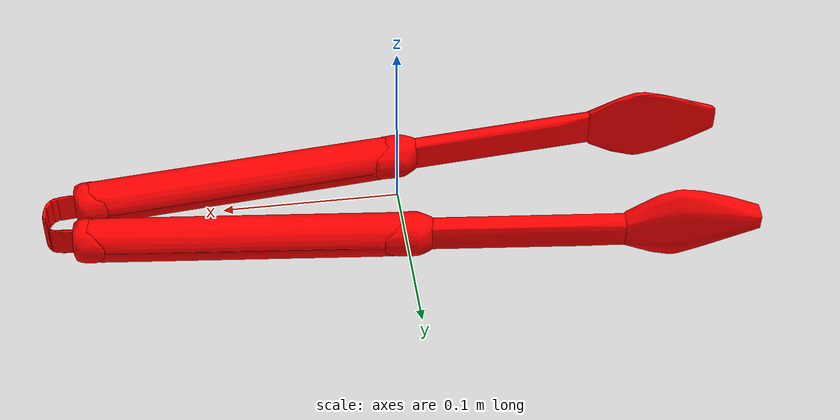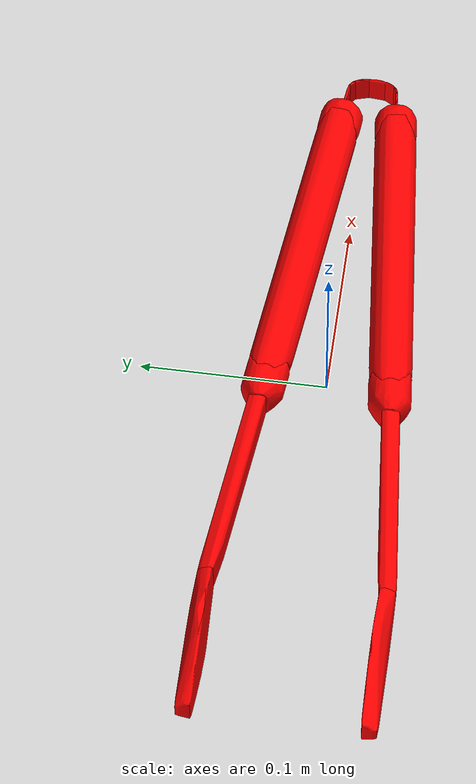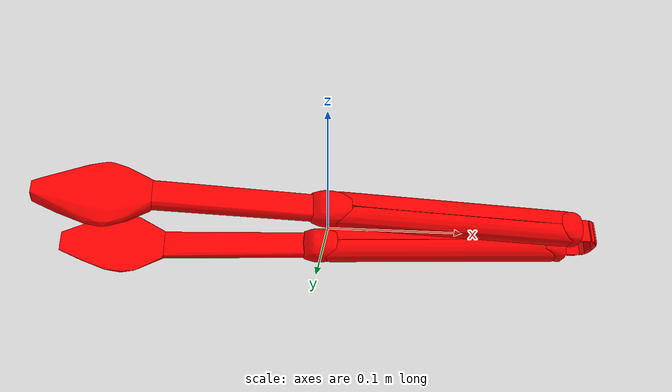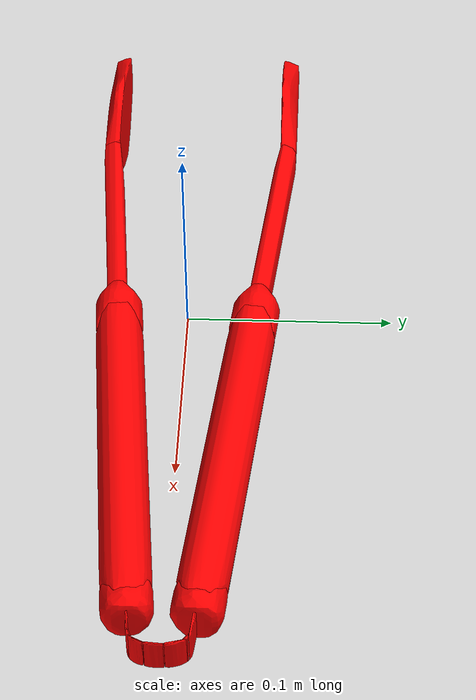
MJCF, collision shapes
<?xml version="1.0" ?>
<mujoco model="kitchen_pliers">
	<compiler meshdir="kitchen_pliers/meshes" texturedir="kitchen_pliers/textures" angle="radian" autolimits="true" balanceinertia="true" boundmass="0.000001" boundinertia="0.000001"/>
	<default>
		<default class="visual">
			<geom contype="0" conaffinity="0"/>
		</default>
		<default class="collision">
			<geom rgba="1.0 0.0 0.0 0.0"/>
		</default>
	</default>
	<asset>
		<mesh name="KitchenPliersHead" file="stl/KitchenPliersHead.stl" scale="1.0 1.0 1.0"/>
		<mesh name="KitchenPliersHead_001" file="stl/KitchenPliersHead_001.stl" scale="1.0 1.0 1.0"/>
		<mesh name="KitchenPliersHead_002" file="stl/KitchenPliersHead_002.stl" scale="1.0 1.0 1.0"/>
		<mesh name="KitchenPliersHead_003" file="stl/KitchenPliersHead_003.stl" scale="1.0 1.0 1.0"/>
		<mesh name="KitchenPliersHead_004" file="stl/KitchenPliersHead_004.stl" scale="1.0 1.0 1.0"/>
		<mesh name="KitchenPliersHandleMetal" file="stl/KitchenPliersHandleMetal.stl" scale="1.0 1.0 1.0"/>
		<mesh name="KitchenPliersHandleMetal_001" file="stl/KitchenPliersHandleMetal_001.stl" scale="1.0 1.0 1.0"/>
		<mesh name="KitchenPliersHandleMetal_002" file="stl/KitchenPliersHandleMetal_002.stl" scale="1.0 1.0 1.0"/>
		<mesh name="KitchenPliersHandleMetal_003" file="stl/KitchenPliersHandleMetal_003.stl" scale="1.0 1.0 1.0"/>
		<mesh name="KitchenPliersHandleMetal_004" file="stl/KitchenPliersHandleMetal_004.stl" scale="1.0 1.0 1.0"/>
		<mesh name="KitchenPliersHandlePlastic" file="obj/KitchenPliersHandlePlastic.obj" scale="1.0 1.0 1.0"/>
		<mesh name="KitchenPliersHandlePlastic_001" file="stl/KitchenPliersHandlePlastic_001.stl" scale="1.0 1.0 1.0"/>
		<mesh name="KitchenPliersHandlePlastic_002" file="stl/KitchenPliersHandlePlastic_002.stl" scale="1.0 1.0 1.0"/>
		<mesh name="KitchenPliersHandlePlastic_003" file="stl/KitchenPliersHandlePlastic_003.stl" scale="1.0 1.0 1.0"/>
		<mesh name="KitchenPliersHandlePlastic_004" file="stl/KitchenPliersHandlePlastic_004.stl" scale="1.0 1.0 1.0"/>
		<mesh name="KitchenPliersHangingHole" file="stl/KitchenPliersHangingHole.stl" scale="1.0 1.0 1.0"/>
		<mesh name="KitchenPliersHangingHole_001" file="stl/KitchenPliersHangingHole_001.stl" scale="1.0 1.0 1.0"/>
		<mesh name="KitchenPliersHangingHole_002" file="stl/KitchenPliersHangingHole_002.stl" scale="1.0 1.0 1.0"/>
		<mesh name="KitchenPliersHangingHole_003" file="stl/KitchenPliersHangingHole_003.stl" scale="1.0 1.0 1.0"/>
		<mesh name="KitchenPliersHangingHole_004" file="stl/KitchenPliersHangingHole_004.stl" scale="1.0 1.0 1.0"/>
		<mesh name="KitchenPliersHangingHole_005" file="stl/KitchenPliersHangingHole_005.stl" scale="1.0 1.0 1.0"/>
		<mesh name="KitchenPliersHangingHole_006" file="stl/KitchenPliersHangingHole_006.stl" scale="1.0 1.0 1.0"/>
		<mesh name="KitchenPliersHangingHole_007" file="stl/KitchenPliersHangingHole_007.stl" scale="1.0 1.0 1.0"/>
		<material name="M_KitchenPliersHead" rgba="0.6470999717712402 0.6470999717712402 0.6470999717712402 1.0" emission="0.0"/>
		<material name="M_KitchenPliersHandleMetal" rgba="0.6470999717712402 0.6470999717712402 0.6470999717712402 1.0" emission="0.0"/>
		<material name="M_KitchenPliersHandlePlastic" texture="T_KitchenPliersHandlePlastic"/>
		<material name="M_KitchenPliersHangingHole" rgba="0.6470999717712402 0.6470999717712402 0.6470999717712402 1.0" emission="0.0"/>
		<texture name="T_KitchenPliersHandlePlastic" type="2d" file="T_KitchenPliersHandlePlastic.png"/>
	</asset>
	<worldbody>
		<body name="kitchen_pliers" pos="0.0 0.0 0.0" quat="1.0 0.0 0.0 0.0">
			<body name="kitchen_pliers_head" pos="0.0 0.0 0.0" quat="1.0 0.0 0.0 0.0">
				<inertial mass="0.06604120135307312" pos="-0.09527463465929031 -0.00019158580107614398 -2.0926424895151285e-06" quat="0.9999998211860657 5.52939013687137e-07 -1.2274520486244e-05 0.0005997137632220984" diaginertia="0.0001320251903962344 0.0008560716523788869 0.000979700474999845"/>
				<geom name="KitchenPliersHead" type="mesh" pos="0.0 0.0 0.0" quat="1.0 0.0 0.0 0.0" mesh="KitchenPliersHead" material="M_KitchenPliersHead" class="visual"/>
				<geom name="KitchenPliersHead_001" type="mesh" pos="0.0 0.0 0.0" quat="1.0 0.0 0.0 0.0" mesh="KitchenPliersHead_001" class="collision"/>
				<geom name="KitchenPliersHead_002" type="mesh" pos="0.0 0.0 0.0" quat="1.0 0.0 0.0 0.0" mesh="KitchenPliersHead_002" class="collision"/>
				<geom name="KitchenPliersHead_003" type="mesh" pos="0.0 0.0 0.0" quat="1.0 0.0 0.0 0.0" mesh="KitchenPliersHead_003" class="collision"/>
				<geom name="KitchenPliersHead_004" type="mesh" pos="0.0 0.0 0.0" quat="1.0 0.0 0.0 0.0" mesh="KitchenPliersHead_004" class="collision"/>
			</body>
			<body name="kitchen_pliers_handle_plastic" pos="0.0 0.0 0.0" quat="1.0 0.0 0.0 0.0">
				<inertial mass="0.1916133612394333" pos="0.06831031292676926 -0.0004918914055451751 3.10893824462255e-06" quat="0.9999978542327881 -3.239452439629531e-07 -8.704527317604516e-06 -0.0020618708804249763" diaginertia="0.00015829596668481827 0.0023368890397250652 0.0024847143795341253"/>
				<geom name="KitchenPliersHandlePlastic" type="mesh" pos="0.0 0.0 0.0" quat="1.0 0.0 0.0 0.0" mesh="KitchenPliersHandlePlastic" material="M_KitchenPliersHandlePlastic" class="visual"/>
				<geom name="KitchenPliersHandlePlastic_001" type="mesh" pos="0.0 0.0 0.0" quat="1.0 0.0 0.0 0.0" mesh="KitchenPliersHandlePlastic_001" class="collision"/>
				<geom name="KitchenPliersHandlePlastic_002" type="mesh" pos="0.0 0.0 0.0" quat="1.0 0.0 0.0 0.0" mesh="KitchenPliersHandlePlastic_002" class="collision"/>
				<geom name="KitchenPliersHandlePlastic_003" type="mesh" pos="0.0 0.0 0.0" quat="1.0 0.0 0.0 0.0" mesh="KitchenPliersHandlePlastic_003" class="collision"/>
				<geom name="KitchenPliersHandlePlastic_004" type="mesh" pos="0.0 0.0 0.0" quat="1.0 0.0 0.0 0.0" mesh="KitchenPliersHandlePlastic_004" class="collision"/>
			</body>
			<body name="kitchen_pliers_handle_metal" pos="0.0 0.0 0.0" quat="1.0 0.0 0.0 0.0">
				<inertial mass="0.9098877906799316" pos="0.08854242414236069 -0.0005285621155053377 -8.600605951869511e-07" quat="0.9999963641166687 -2.1226531643492308e-08 3.829519755527144e-06 -0.002703472040593624" diaginertia="0.0006158436299301684 0.009113099426031113 0.009665689431130886"/>
				<geom name="KitchenPliersHandleMetal" type="mesh" pos="0.0 0.0 0.0" quat="1.0 0.0 0.0 0.0" mesh="KitchenPliersHandleMetal" material="M_KitchenPliersHandleMetal" class="visual"/>
				<geom name="KitchenPliersHandleMetal_001" type="mesh" pos="0.0 0.0 0.0" quat="1.0 0.0 0.0 0.0" mesh="KitchenPliersHandleMetal_001" class="collision"/>
				<geom name="KitchenPliersHandleMetal_002" type="mesh" pos="0.0 0.0 0.0" quat="1.0 0.0 0.0 0.0" mesh="KitchenPliersHandleMetal_002" class="collision"/>
				<geom name="KitchenPliersHandleMetal_003" type="mesh" pos="0.0 0.0 0.0" quat="1.0 0.0 0.0 0.0" mesh="KitchenPliersHandleMetal_003" class="collision"/>
				<geom name="KitchenPliersHandleMetal_004" type="mesh" pos="0.0 0.0 0.0" quat="1.0 0.0 0.0 0.0" mesh="KitchenPliersHandleMetal_004" class="collision"/>
			</body>
			<body name="kitchen_pliers_hanging_hole" pos="0.0 0.0 0.0" quat="1.0 0.0 0.0 0.0">
				<inertial mass="0.005537407472729683" pos="0.19402135908603668 -0.0007414983701892197 -0.0002257821470266208" quat="0.9999979734420776 7.586560968775302e-05 0.0005814600735902786 -0.0019134950125589967" diaginertia="8.377042490792519e-07 0.00020877506176475435 0.0002093532239086926"/>
				<geom name="KitchenPliersHangingHole" type="mesh" pos="0.0 0.0 0.0" quat="1.0 0.0 0.0 0.0" mesh="KitchenPliersHangingHole" material="M_KitchenPliersHangingHole" class="visual"/>
				<geom name="KitchenPliersHangingHole_001" type="mesh" pos="0.0 0.0 0.0" quat="1.0 0.0 0.0 0.0" mesh="KitchenPliersHangingHole_001" class="collision"/>
				<geom name="KitchenPliersHangingHole_002" type="mesh" pos="0.0 0.0 0.0" quat="1.0 0.0 0.0 0.0" mesh="KitchenPliersHangingHole_002" class="collision"/>
				<geom name="KitchenPliersHangingHole_003" type="mesh" pos="0.0 0.0 0.0" quat="1.0 0.0 0.0 0.0" mesh="KitchenPliersHangingHole_003" class="collision"/>
				<geom name="KitchenPliersHangingHole_004" type="mesh" pos="0.0 0.0 0.0" quat="1.0 0.0 0.0 0.0" mesh="KitchenPliersHangingHole_004" class="collision"/>
				<geom name="KitchenPliersHangingHole_005" type="mesh" pos="0.0 0.0 0.0" quat="1.0 0.0 0.0 0.0" mesh="KitchenPliersHangingHole_005" class="collision"/>
				<geom name="KitchenPliersHangingHole_006" type="mesh" pos="0.0 0.0 0.0" quat="1.0 0.0 0.0 0.0" mesh="KitchenPliersHangingHole_006" class="collision"/>
				<geom name="KitchenPliersHangingHole_007" type="mesh" pos="0.0 0.0 0.0" quat="1.0 0.0 0.0 0.0" mesh="KitchenPliersHangingHole_007" class="collision"/>
			</body>
		</body>
	</worldbody>
	<equality/>
</mujoco>
